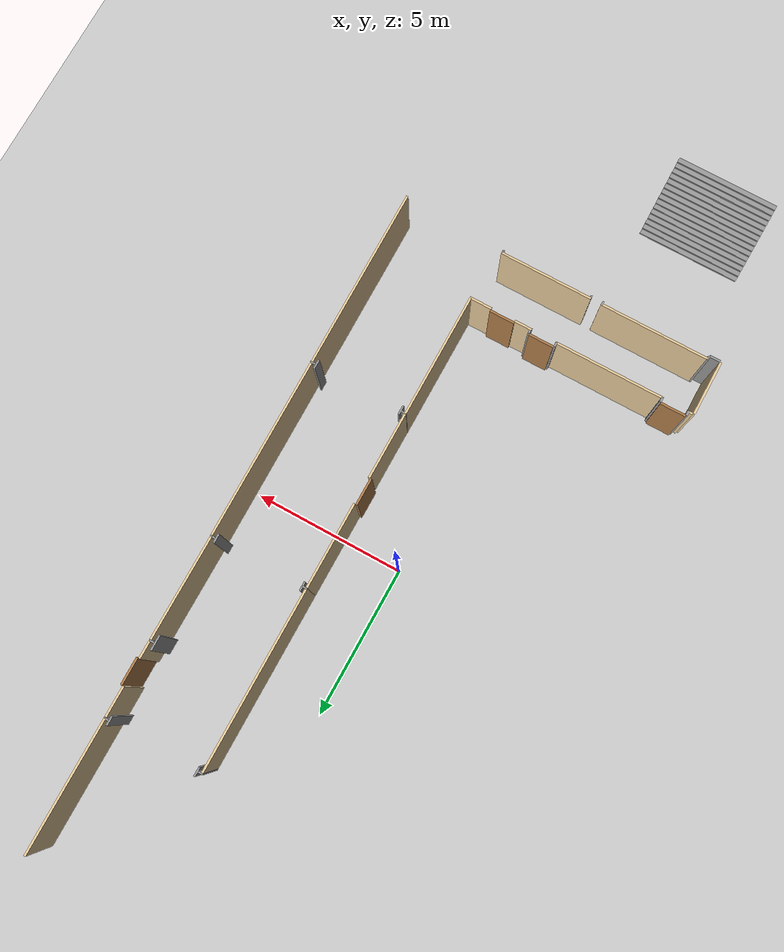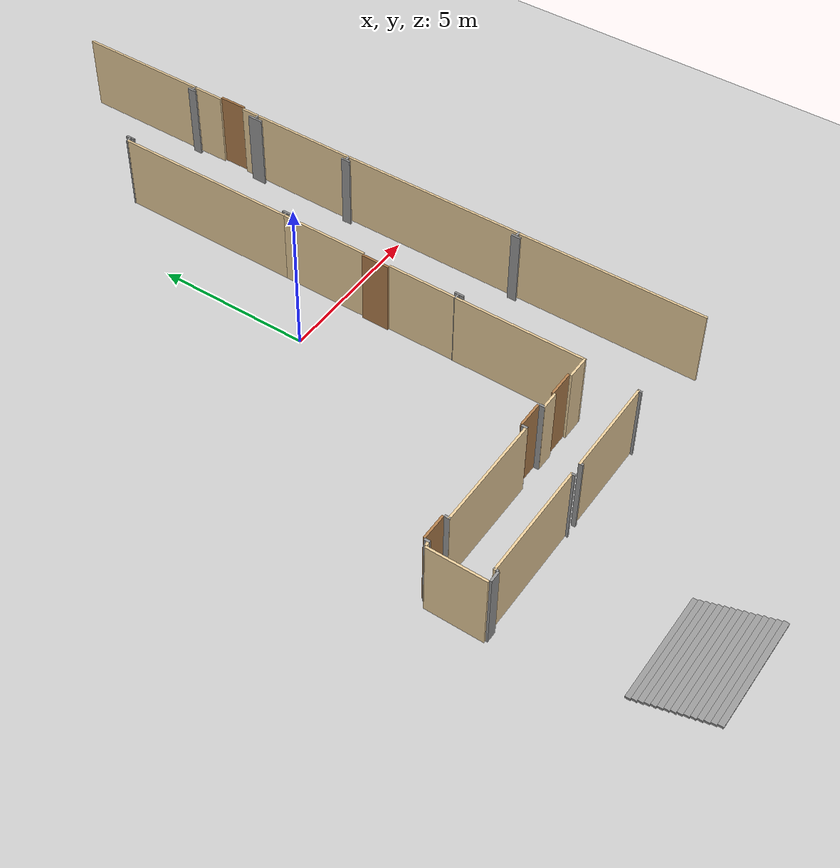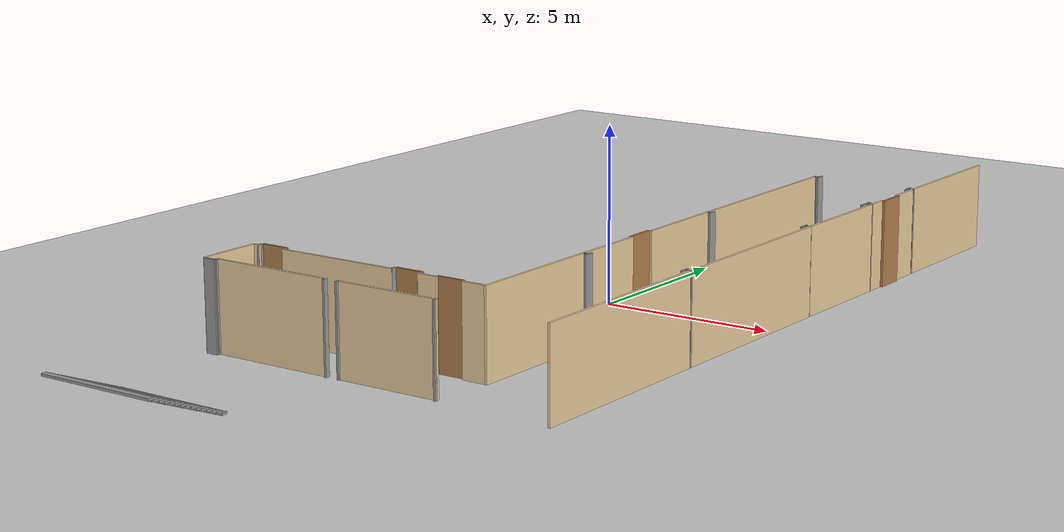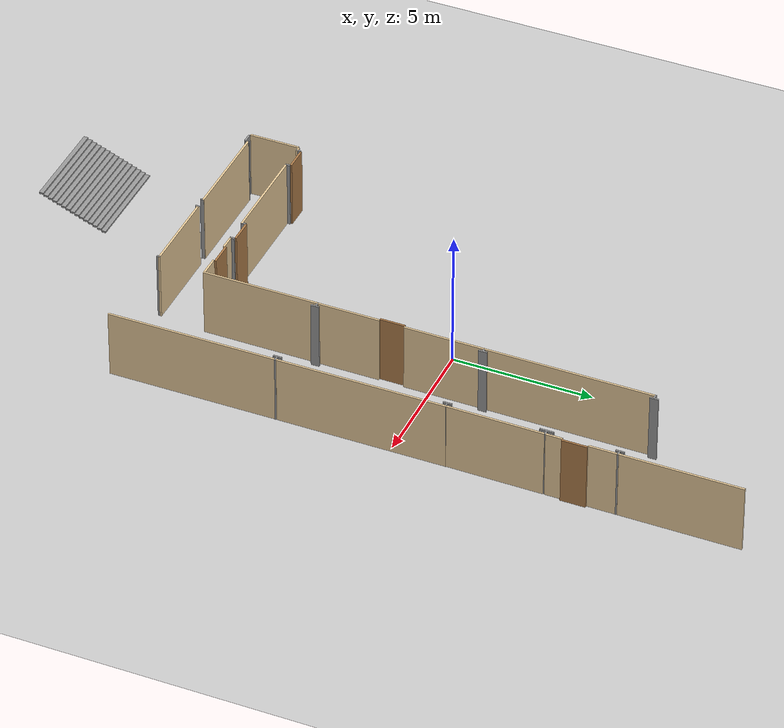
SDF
<sdf version="1.7">
 <world name="default">
  <model name="ground_plane">
   <static>1</static>
   <link name="link">
    <collision name="collision">
     <geometry><plane><normal>0 0 1</normal><size>100 100</size></plane></geometry>
     <surface>
      <contact><collide_bitmask>65535</collide_bitmask></contact>
      <friction><ode><mu>100</mu><mu2>50</mu2></ode></friction>
     </surface>
    </collision>
    <visual name="visual">
     <cast_shadows>0</cast_shadows>
     <geometry><plane><normal>0 0 1</normal><size>100 100</size></plane></geometry>
     <material>
      <script><uri>file://media/materials/scripts/gazebo.material</uri><name>Gazebo/Grey</name></script>
     </material>
    </visual>
   </link>
  </model>
  <model name="Fakulte_koridor">
   <pose>-0.108629 -0.105707 0 0 -0 0</pose>
   <link name="Stairs_0">
    <visual name="Stairs_0_Visual_0">
     <pose>-3.19496 -13.5268 0.033333 0 -0 0</pose>
     <geometry><box><size>3.48995 0.166667 0.066667</size></box></geometry>
     <material>
      <script><uri>file://media/materials/scripts/gazebo.material</uri><name>Gazebo/Grey</name></script>
      <ambient>0.333333 0.341176 0.32549 1</ambient>
     </material>
     <meta><layer>0</layer></meta>
    </visual>
    <collision name="Stairs_0_Collision_0">
     <geometry><box><size>3.48995 0.166667 0.066667</size></box></geometry>
     <pose>-3.19496 -13.5268 0.033333 0 -0 0</pose>
    </collision>
    <visual name="Stairs_0_Visual_1">
     <pose>-3.19496 -13.6934 0.1 0 -0 0</pose>
     <geometry><box><size>3.48995 0.166667 0.066667</size></box></geometry>
     <material>
      <script><uri>file://media/materials/scripts/gazebo.material</uri><name>Gazebo/Grey</name></script>
      <ambient>0.333333 0.341176 0.32549 1</ambient>
     </material>
     <meta><layer>0</layer></meta>
    </visual>
    <collision name="Stairs_0_Collision_1">
     <geometry><box><size>3.48995 0.166667 0.066667</size></box></geometry>
     <pose>-3.19496 -13.6934 0.1 0 -0 0</pose>
    </collision>
    <visual name="Stairs_0_Visual_2">
     <pose>-3.19496 -13.8601 0.166667 0 -0 0</pose>
     <geometry><box><size>3.48995 0.166667 0.066667</size></box></geometry>
     <material>
      <script><uri>file://media/materials/scripts/gazebo.material</uri><name>Gazebo/Grey</name></script>
      <ambient>0.333333 0.341176 0.32549 1</ambient>
     </material>
     <meta><layer>0</layer></meta>
    </visual>
    <collision name="Stairs_0_Collision_2">
     <geometry><box><size>3.48995 0.166667 0.066667</size></box></geometry>
     <pose>-3.19496 -13.8601 0.166667 0 -0 0</pose>
    </collision>
    <visual name="Stairs_0_Visual_3">
     <pose>-3.19496 -14.0268 0.233333 0 -0 0</pose>
     <geometry><box><size>3.48995 0.166667 0.066667</size></box></geometry>
     <material>
      <script><uri>file://media/materials/scripts/gazebo.material</uri><name>Gazebo/Grey</name></script>
      <ambient>0.333333 0.341176 0.32549 1</ambient>
     </material>
     <meta><layer>0</layer></meta>
    </visual>
    <collision name="Stairs_0_Collision_3">
     <geometry><box><size>3.48995 0.166667 0.066667</size></box></geometry>
     <pose>-3.19496 -14.0268 0.233333 0 -0 0</pose>
    </collision>
    <visual name="Stairs_0_Visual_4">
     <pose>-3.19496 -14.1934 0.3 0 -0 0</pose>
     <geometry><box><size>3.48995 0.166667 0.066667</size></box></geometry>
     <material>
      <script><uri>file://media/materials/scripts/gazebo.material</uri><name>Gazebo/Grey</name></script>
      <ambient>0.333333 0.341176 0.32549 1</ambient>
     </material>
     <meta><layer>0</layer></meta>
    </visual>
    <collision name="Stairs_0_Collision_4">
     <geometry><box><size>3.48995 0.166667 0.066667</size></box></geometry>
     <pose>-3.19496 -14.1934 0.3 0 -0 0</pose>
    </collision>
    <visual name="Stairs_0_Visual_5">
     <pose>-3.19496 -14.3601 0.366667 0 -0 0</pose>
     <geometry><box><size>3.48995 0.166667 0.066667</size></box></geometry>
     <material>
      <script><uri>file://media/materials/scripts/gazebo.material</uri><name>Gazebo/Grey</name></script>
      <ambient>0.333333 0.341176 0.32549 1</ambient>
     </material>
     <meta><layer>0</layer></meta>
    </visual>
    <collision name="Stairs_0_Collision_5">
     <geometry><box><size>3.48995 0.166667 0.066667</size></box></geometry>
     <pose>-3.19496 -14.3601 0.366667 0 -0 0</pose>
    </collision>
    <visual name="Stairs_0_Visual_6">
     <pose>-3.19496 -14.5268 0.433333 0 -0 0</pose>
     <geometry><box><size>3.48995 0.166667 0.066667</size></box></geometry>
     <material>
      <script><uri>file://media/materials/scripts/gazebo.material</uri><name>Gazebo/Grey</name></script>
      <ambient>0.333333 0.341176 0.32549 1</ambient>
     </material>
     <meta><layer>0</layer></meta>
    </visual>
    <collision name="Stairs_0_Collision_6">
     <geometry><box><size>3.48995 0.166667 0.066667</size></box></geometry>
     <pose>-3.19496 -14.5268 0.433333 0 -0 0</pose>
    </collision>
    <visual name="Stairs_0_Visual_7">
     <pose>-3.19496 -14.6934 0.5 0 -0 0</pose>
     <geometry><box><size>3.48995 0.166667 0.066667</size></box></geometry>
     <material>
      <script><uri>file://media/materials/scripts/gazebo.material</uri><name>Gazebo/Grey</name></script>
      <ambient>0.333333 0.341176 0.32549 1</ambient>
     </material>
     <meta><layer>0</layer></meta>
    </visual>
    <collision name="Stairs_0_Collision_7">
     <geometry><box><size>3.48995 0.166667 0.066667</size></box></geometry>
     <pose>-3.19496 -14.6934 0.5 0 -0 0</pose>
    </collision>
    <visual name="Stairs_0_Visual_8">
     <pose>-3.19496 -14.8601 0.566667 0 -0 0</pose>
     <geometry><box><size>3.48995 0.166667 0.066667</size></box></geometry>
     <material>
      <script><uri>file://media/materials/scripts/gazebo.material</uri><name>Gazebo/Grey</name></script>
      <ambient>0.333333 0.341176 0.32549 1</ambient>
     </material>
     <meta><layer>0</layer></meta>
    </visual>
    <collision name="Stairs_0_Collision_8">
     <geometry><box><size>3.48995 0.166667 0.066667</size></box></geometry>
     <pose>-3.19496 -14.8601 0.566667 0 -0 0</pose>
    </collision>
    <visual name="Stairs_0_Visual_9">
     <pose>-3.19496 -15.0268 0.633333 0 -0 0</pose>
     <geometry><box><size>3.48995 0.166667 0.066667</size></box></geometry>
     <material>
      <script><uri>file://media/materials/scripts/gazebo.material</uri><name>Gazebo/Grey</name></script>
      <ambient>0.333333 0.341176 0.32549 1</ambient>
     </material>
     <meta><layer>0</layer></meta>
    </visual>
    <collision name="Stairs_0_Collision_9">
     <geometry><box><size>3.48995 0.166667 0.066667</size></box></geometry>
     <pose>-3.19496 -15.0268 0.633333 0 -0 0</pose>
    </collision>
    <visual name="Stairs_0_Visual_10">
     <pose>-3.19496 -15.1934 0.7 0 -0 0</pose>
     <geometry><box><size>3.48995 0.166667 0.066667</size></box></geometry>
     <material>
      <script><uri>file://media/materials/scripts/gazebo.material</uri><name>Gazebo/Grey</name></script>
      <ambient>0.333333 0.341176 0.32549 1</ambient>
     </material>
     <meta><layer>0</layer></meta>
    </visual>
    <collision name="Stairs_0_Collision_10">
     <geometry><box><size>3.48995 0.166667 0.066667</size></box></geometry>
     <pose>-3.19496 -15.1934 0.7 0 -0 0</pose>
    </collision>
    <visual name="Stairs_0_Visual_11">
     <pose>-3.19496 -15.3601 0.766667 0 -0 0</pose>
     <geometry><box><size>3.48995 0.166667 0.066667</size></box></geometry>
     <material>
      <script><uri>file://media/materials/scripts/gazebo.material</uri><name>Gazebo/Grey</name></script>
      <ambient>0.333333 0.341176 0.32549 1</ambient>
     </material>
     <meta><layer>0</layer></meta>
    </visual>
    <collision name="Stairs_0_Collision_11">
     <geometry><box><size>3.48995 0.166667 0.066667</size></box></geometry>
     <pose>-3.19496 -15.3601 0.766667 0 -0 0</pose>
    </collision>
    <visual name="Stairs_0_Visual_12">
     <pose>-3.19496 -15.5268 0.833333 0 -0 0</pose>
     <geometry><box><size>3.48995 0.166667 0.066667</size></box></geometry>
     <material>
      <script><uri>file://media/materials/scripts/gazebo.material</uri><name>Gazebo/Grey</name></script>
      <ambient>0.333333 0.341176 0.32549 1</ambient>
     </material>
     <meta><layer>0</layer></meta>
    </visual>
    <collision name="Stairs_0_Collision_12">
     <geometry><box><size>3.48995 0.166667 0.066667</size></box></geometry>
     <pose>-3.19496 -15.5268 0.833333 0 -0 0</pose>
    </collision>
    <visual name="Stairs_0_Visual_13">
     <pose>-3.19496 -15.6934 0.9 0 -0 0</pose>
     <geometry><box><size>3.48995 0.166667 0.066667</size></box></geometry>
     <material>
      <script><uri>file://media/materials/scripts/gazebo.material</uri><name>Gazebo/Grey</name></script>
      <ambient>0.333333 0.341176 0.32549 1</ambient>
     </material>
     <meta><layer>0</layer></meta>
    </visual>
    <collision name="Stairs_0_Collision_13">
     <geometry><box><size>3.48995 0.166667 0.066667</size></box></geometry>
     <pose>-3.19496 -15.6934 0.9 0 -0 0</pose>
    </collision>
    <visual name="Stairs_0_Visual_14">
     <pose>-3.19496 -15.8601 0.966667 0 -0 0</pose>
     <geometry><box><size>3.48995 0.166667 0.066667</size></box></geometry>
     <material>
      <script><uri>file://media/materials/scripts/gazebo.material</uri><name>Gazebo/Grey</name></script>
      <ambient>0.333333 0.341176 0.32549 1</ambient>
     </material>
     <meta><layer>0</layer></meta>
    </visual>
    <collision name="Stairs_0_Collision_14">
     <geometry><box><size>3.48995 0.166667 0.066667</size></box></geometry>
     <pose>-3.19496 -15.8601 0.966667 0 -0 0</pose>
    </collision>
   </link>
   <link name="Wall_174">
    <collision name="Wall_174_Collision">
     <geometry><box><size>0.175 0.06 2.5</size></box></geometry>
     <pose>0 0 1.25 0 -0 0</pose>
    </collision>
    <visual name="Wall_174_Visual">
     <pose>0 0 1.25 0 -0 0</pose>
     <geometry><box><size>0.175 0.06 2.5</size></box></geometry>
     <material>
      <script><uri>file://media/materials/scripts/gazebo.material</uri><name>Gazebo/Grey</name></script>
      <ambient>0.180392 0.203922 0.211765 1</ambient>
     </material>
     <meta><layer>0</layer></meta>
    </visual>
    <pose>2.10606 8.02576 0 0 -0 0</pose>
   </link>
   <link name="Wall_176">
    <collision name="Wall_176_Collision">
     <geometry><box><size>0.3 0.06 2.5</size></box></geometry>
     <pose>0 0 1.25 0 -0 0</pose>
    </collision>
    <visual name="Wall_176_Visual">
     <pose>0 0 1.25 0 -0 0</pose>
     <geometry><box><size>0.3 0.06 2.5</size></box></geometry>
     <material>
      <script><uri>file://media/materials/scripts/gazebo.material</uri><name>Gazebo/Grey</name></script>
      <ambient>0.180392 0.203922 0.211765 1</ambient>
     </material>
     <meta><layer>0</layer></meta>
    </visual>
    <pose>2.2092 8.04168 0 0 -0 -1.5708</pose>
   </link>
   <link name="Wall_178">
    <collision name="Wall_178_Collision">
     <geometry><box><size>5.995 0.07 2.5</size></box></geometry>
     <pose>0 0 1.25 0 -0 0</pose>
    </collision>
    <visual name="Wall_178_Visual">
     <pose>0 0 1.25 0 -0 0</pose>
     <geometry><box><size>5.995 0.07 2.5</size></box></geometry>
     <material>
      <script><uri>file://media/materials/scripts/gazebo.material</uri><name>Gazebo/Grey</name></script>
      <ambient>0.921569 0.807843 0.615686 1</ambient>
     </material>
     <meta><layer>0</layer></meta>
    </visual>
    <pose>2.05863 5.00721 0 0 -0 -1.5708</pose>
   </link>
   <link name="Wall_180">
    <collision name="Wall_180_Collision">
     <geometry><box><size>0.175 0.06 2.5</size></box></geometry>
     <pose>0 0 1.25 0 -0 0</pose>
    </collision>
    <visual name="Wall_180_Visual">
     <pose>0 0 1.25 0 -0 0</pose>
     <geometry><box><size>0.175 0.06 2.5</size></box></geometry>
     <material>
      <script><uri>file://media/materials/scripts/gazebo.material</uri><name>Gazebo/Grey</name></script>
      <ambient>0.180392 0.203922 0.211765 1</ambient>
     </material>
     <meta><layer>0</layer></meta>
    </visual>
    <pose>2.11134 2.04088 0 0 -0 0</pose>
   </link>
   <link name="Wall_182">
    <collision name="Wall_182_Collision">
     <geometry><box><size>0.3 0.06 2.5</size></box></geometry>
     <pose>0 0 1.25 0 -0 0</pose>
    </collision>
    <visual name="Wall_182_Visual">
     <pose>0 0 1.25 0 -0 0</pose>
     <geometry><box><size>0.3 0.06 2.5</size></box></geometry>
     <material>
      <script><uri>file://media/materials/scripts/gazebo.material</uri><name>Gazebo/Grey</name></script>
      <ambient>0.180392 0.203922 0.211765 1</ambient>
     </material>
     <meta><layer>0</layer></meta>
    </visual>
    <pose>2.19078 2.04124 0 0 -0 -1.5708</pose>
   </link>
   <link name="Wall_184">
    <collision name="Wall_184_Collision">
     <geometry><box><size>2.842 0.07 2.5</size></box></geometry>
     <pose>0 0 1.25 0 -0 0</pose>
    </collision>
    <visual name="Wall_184_Visual">
     <pose>0 0 1.25 0 -0 0</pose>
     <geometry><box><size>2.842 0.07 2.5</size></box></geometry>
     <material>
      <script><uri>file://media/materials/scripts/gazebo.material</uri><name>Gazebo/Grey</name></script>
      <ambient>0.921569 0.807843 0.615686 1</ambient>
     </material>
     <meta><layer>0</layer></meta>
    </visual>
    <pose>2.05811 0.604001 0 0 -0 -1.5708</pose>
   </link>
   <link name="Wall_186">
    <collision name="Wall_186_Collision">
     <geometry><box><size>2.21 0.07 2.5</size></box></geometry>
     <pose>0 0 1.25 0 -0 0</pose>
    </collision>
    <visual name="Wall_186_Visual">
     <pose>0 0 1.25 0 -0 0</pose>
     <geometry><box><size>2.21 0.07 2.5</size></box></geometry>
     <material>
      <script><uri>file://media/materials/scripts/gazebo.material</uri><name>Gazebo/Grey</name></script>
      <ambient>0.921569 0.807843 0.615686 1</ambient>
     </material>
     <meta><layer>0</layer></meta>
    </visual>
    <pose>2.05119 -2.80108 0 0 -0 -1.5708</pose>
   </link>
   <link name="Wall_188">
    <collision name="Wall_188_Collision">
     <geometry><box><size>0.895 0.07 2.5</size></box></geometry>
     <pose>0 0 1.25 0 -0 0</pose>
    </collision>
    <visual name="Wall_188_Visual">
     <pose>0 0 1.25 0 -0 0</pose>
     <geometry><box><size>0.895 0.07 2.5</size></box></geometry>
     <material>
      <script><uri>file://media/materials/scripts/gazebo.material</uri><name>Gazebo/Wood</name></script>
      <ambient>1 1 1 1</ambient>
     </material>
     <meta><layer>0</layer></meta>
    </visual>
    <pose>1.98547 -1.25931 0 0 -0 -1.5708</pose>
   </link>
   <link name="Wall_190">
    <collision name="Wall_190_Collision">
     <geometry><box><size>0.175 0.06 2.5</size></box></geometry>
     <pose>0 0 1.25 0 -0 0</pose>
    </collision>
    <visual name="Wall_190_Visual">
     <pose>0 0 1.25 0 -0 0</pose>
     <geometry><box><size>0.175 0.06 2.5</size></box></geometry>
     <material>
      <script><uri>file://media/materials/scripts/gazebo.material</uri><name>Gazebo/Grey</name></script>
      <ambient>0.180392 0.203922 0.211765 1</ambient>
     </material>
     <meta><layer>0</layer></meta>
    </visual>
    <pose>2.09974 -3.92485 0 0 -0 0</pose>
   </link>
   <link name="Wall_342">
    <collision name="Wall_342_Collision">
     <geometry><box><size>0.3 0.06 2.5</size></box></geometry>
     <pose>0 0 1.25 0 -0 0</pose>
    </collision>
    <visual name="Wall_342_Visual">
     <pose>0 0 1.25 0 -0 0</pose>
     <geometry><box><size>0.3 0.06 2.5</size></box></geometry>
     <material>
      <script><uri>file://media/materials/scripts/gazebo.material</uri><name>Gazebo/Grey</name></script>
      <ambient>0.180392 0.203922 0.211765 1</ambient>
     </material>
     <meta><layer>0</layer></meta>
    </visual>
    <pose>2.21449 -3.94612 0 0 -0 -1.5708</pose>
   </link>
   <link name="Wall_344">
    <collision name="Wall_344_Collision">
     <geometry><box><size>4.16 0.07 2.5</size></box></geometry>
     <pose>0 0 1.25 0 -0 0</pose>
    </collision>
    <visual name="Wall_344_Visual">
     <pose>0 0 1.25 0 -0 0</pose>
     <geometry><box><size>4.16 0.07 2.5</size></box></geometry>
     <material>
      <script><uri>file://media/materials/scripts/gazebo.material</uri><name>Gazebo/Grey</name></script>
      <ambient>0.921569 0.807843 0.615686 1</ambient>
     </material>
     <meta><layer>0</layer></meta>
    </visual>
    <pose>2.04668 -5.99595 0 0 -0 -1.5708</pose>
   </link>
   <link name="Wall_348">
    <collision name="Wall_348_Collision">
     <geometry><box><size>0.745 0.07 2.5</size></box></geometry>
     <pose>0 0 1.25 0 -0 0</pose>
    </collision>
    <visual name="Wall_348_Visual">
     <pose>0 0 1.25 0 -0 0</pose>
     <geometry><box><size>0.745 0.07 2.5</size></box></geometry>
     <material>
      <script><uri>file://media/materials/scripts/gazebo.material</uri><name>Gazebo/Grey</name></script>
      <ambient>0.921569 0.807843 0.615686 1</ambient>
     </material>
     <meta><layer>0</layer></meta>
    </visual>
    <pose>1.70111 -8.03814 0 0 -0 0</pose>
   </link>
   <link name="Wall_350">
    <collision name="Wall_350_Collision">
     <geometry><box><size>0.825 0.07 2.5</size></box></geometry>
     <pose>0 0 1.25 0 -0 0</pose>
    </collision>
    <visual name="Wall_350_Visual">
     <pose>0 0 1.25 0 -0 0</pose>
     <geometry><box><size>0.825 0.07 2.5</size></box></geometry>
     <material>
      <script><uri>file://media/materials/scripts/gazebo.material</uri><name>Gazebo/Wood</name></script>
      <ambient>1 1 1 1</ambient>
     </material>
     <meta><layer>0</layer></meta>
    </visual>
    <pose>0.927815 -7.96515 0 0 -0 3.14159</pose>
   </link>
   <link name="Wall_352">
    <collision name="Wall_352_Collision">
     <geometry><box><size>0.58 0.07 2.5</size></box></geometry>
     <pose>0 0 1.25 0 -0 0</pose>
    </collision>
    <visual name="Wall_352_Visual">
     <pose>0 0 1.25 0 -0 0</pose>
     <geometry><box><size>0.58 0.07 2.5</size></box></geometry>
     <material>
      <script><uri>file://media/materials/scripts/gazebo.material</uri><name>Gazebo/Grey</name></script>
      <ambient>0.921569 0.807843 0.615686 1</ambient>
     </material>
     <meta><layer>0</layer></meta>
    </visual>
    <pose>0.242096 -8.03226 0 0 -0 0</pose>
   </link>
   <link name="Wall_354">
    <collision name="Wall_354_Collision">
     <geometry><box><size>0.17 0.07 2.5</size></box></geometry>
     <pose>0 0 1.25 0 -0 0</pose>
    </collision>
    <visual name="Wall_354_Visual">
     <pose>0 0 1.25 0 -0 0</pose>
     <geometry><box><size>0.17 0.07 2.5</size></box></geometry>
     <material>
      <script><uri>file://media/materials/scripts/gazebo.material</uri><name>Gazebo/Grey</name></script>
      <ambient>1 1 1 1</ambient>
     </material>
     <meta><layer>0</layer></meta>
    </visual>
    <pose>-0.019371 -7.98029 0 0 -0 1.5708</pose>
   </link>
   <link name="Wall_356">
    <collision name="Wall_356_Collision">
     <geometry><box><size>0.825 0.07 2.5</size></box></geometry>
     <pose>0 0 1.25 0 -0 0</pose>
    </collision>
    <visual name="Wall_356_Visual">
     <pose>0 0 1.25 0 -0 0</pose>
     <geometry><box><size>0.825 0.07 2.5</size></box></geometry>
     <material>
      <script><uri>file://media/materials/scripts/gazebo.material</uri><name>Gazebo/Wood</name></script>
      <ambient>1 1 1 1</ambient>
     </material>
     <meta><layer>0</layer></meta>
    </visual>
    <pose>-0.460042 -7.86803 0 0 -0 0</pose>
   </link>
   <link name="Wall_358">
    <collision name="Wall_358_Collision">
     <geometry><box><size>0.17 0.07 2.5</size></box></geometry>
     <pose>0 0 1.25 0 -0 0</pose>
    </collision>
    <visual name="Wall_358_Visual">
     <pose>0 0 1.25 0 -0 0</pose>
     <geometry><box><size>0.17 0.07 2.5</size></box></geometry>
     <material>
      <script><uri>file://media/materials/scripts/gazebo.material</uri><name>Gazebo/Grey</name></script>
      <ambient>1 1 1 1</ambient>
     </material>
     <meta><layer>0</layer></meta>
    </visual>
    <pose>-0.896745 -7.97567 0 0 -0 -1.5708</pose>
   </link>
   <link name="Wall_360">
    <collision name="Wall_360_Collision">
     <geometry><box><size>3.637 0.07 2.5</size></box></geometry>
     <pose>0 0 1.25 0 -0 0</pose>
    </collision>
    <visual name="Wall_360_Visual">
     <pose>0 0 1.25 0 -0 0</pose>
     <geometry><box><size>3.637 0.07 2.5</size></box></geometry>
     <material>
      <script><uri>file://media/materials/scripts/gazebo.material</uri><name>Gazebo/Grey</name></script>
      <ambient>0.921569 0.807843 0.615686 1</ambient>
     </material>
     <meta><layer>0</layer></meta>
    </visual>
    <pose>-2.68603 -8.02689 0 0 -0 0</pose>
   </link>
   <link name="Wall_362">
    <collision name="Wall_362_Collision">
     <geometry><box><size>0.17 0.07 2.5</size></box></geometry>
     <pose>0 0 1.25 0 -0 0</pose>
    </collision>
    <visual name="Wall_362_Visual">
     <pose>0 0 1.25 0 -0 0</pose>
     <geometry><box><size>0.17 0.07 2.5</size></box></geometry>
     <material>
      <script><uri>file://media/materials/scripts/gazebo.material</uri><name>Gazebo/Grey</name></script>
      <ambient>1 1 1 1</ambient>
     </material>
     <meta><layer>0</layer></meta>
    </visual>
    <pose>-4.47183 -7.97134 0 0 -0 -1.5708</pose>
   </link>
   <link name="Wall_364">
    <collision name="Wall_364_Collision">
     <geometry><box><size>0.825 0.07 2.5</size></box></geometry>
     <pose>0 0 1.25 0 -0 0</pose>
    </collision>
    <visual name="Wall_364_Visual">
     <pose>0 0 1.25 0 -0 0</pose>
     <geometry><box><size>0.825 0.07 2.5</size></box></geometry>
     <material>
      <script><uri>file://media/materials/scripts/gazebo.material</uri><name>Gazebo/Wood</name></script>
      <ambient>1 1 1 1</ambient>
     </material>
     <meta><layer>0</layer></meta>
    </visual>
    <pose>-4.91202 -7.86091 0 0 -0 0</pose>
   </link>
   <link name="Wall_366">
    <collision name="Wall_366_Collision">
     <geometry><box><size>0.17 0.07 2.5</size></box></geometry>
     <pose>0 0 1.25 0 -0 0</pose>
    </collision>
    <visual name="Wall_366_Visual">
     <pose>0 0 1.25 0 -0 0</pose>
     <geometry><box><size>0.17 0.07 2.5</size></box></geometry>
     <material>
      <script><uri>file://media/materials/scripts/gazebo.material</uri><name>Gazebo/Grey</name></script>
      <ambient>1 1 1 1</ambient>
     </material>
     <meta><layer>0</layer></meta>
    </visual>
    <pose>-5.34479 -7.96618 0 0 -0 -1.5708</pose>
   </link>
   <link name="Wall_368">
    <collision name="Wall_368_Collision">
     <geometry><box><size>0.182 0.07 2.5</size></box></geometry>
     <pose>0 0 1.25 0 -0 0</pose>
    </collision>
    <visual name="Wall_368_Visual">
     <pose>0 0 1.25 0 -0 0</pose>
     <geometry><box><size>0.182 0.07 2.5</size></box></geometry>
     <material>
      <script><uri>file://media/materials/scripts/gazebo.material</uri><name>Gazebo/Grey</name></script>
      <ambient>0.921569 0.807843 0.615686 1</ambient>
     </material>
     <meta><layer>0</layer></meta>
    </visual>
    <pose>-5.39932 -8.01565 0 0 -0 0</pose>
   </link>
   <link name="Wall_370">
    <collision name="Wall_370_Collision">
     <geometry><box><size>1.805 0.07 2.5</size></box></geometry>
     <pose>0 0 1.25 0 -0 0</pose>
    </collision>
    <visual name="Wall_370_Visual">
     <pose>0 0 1.25 0 -0 0</pose>
     <geometry><box><size>1.805 0.07 2.5</size></box></geometry>
     <material>
      <script><uri>file://media/materials/scripts/gazebo.material</uri><name>Gazebo/Grey</name></script>
      <ambient>0.921569 0.807843 0.615686 1</ambient>
     </material>
     <meta><layer>0</layer></meta>
    </visual>
    <pose>-5.5237 -8.93953 0 0 -0 -1.5708</pose>
   </link>
   <link name="Wall_372">
    <collision name="Wall_372_Collision">
     <geometry><box><size>0.345 0.07 2.5</size></box></geometry>
     <pose>0 0 1.25 0 -0 0</pose>
    </collision>
    <visual name="Wall_372_Visual">
     <pose>0 0 1.25 0 -0 0</pose>
     <geometry><box><size>0.345 0.07 2.5</size></box></geometry>
     <material>
      <script><uri>file://media/materials/scripts/gazebo.material</uri><name>Gazebo/Grey</name></script>
      <ambient>0.180392 0.203922 0.211765 1</ambient>
     </material>
     <meta><layer>0</layer></meta>
    </visual>
    <pose>-5.32042 -9.87001 0 0 -0 0</pose>
   </link>
   <link name="Wall_374">
    <collision name="Wall_374_Collision">
     <geometry><box><size>0.135 0.06 2.5</size></box></geometry>
     <pose>0 0 1.25 0 -0 0</pose>
    </collision>
    <visual name="Wall_374_Visual">
     <pose>0 0 1.25 0 -0 0</pose>
     <geometry><box><size>0.135 0.06 2.5</size></box></geometry>
     <material>
      <script><uri>file://media/materials/scripts/gazebo.material</uri><name>Gazebo/Grey</name></script>
      <ambient>0.180392 0.203922 0.211765 1</ambient>
     </material>
     <meta><layer>0</layer></meta>
    </visual>
    <pose>-5.12902 -9.79057 0 0 -0 -1.5708</pose>
   </link>
   <link name="Wall_376">
    <collision name="Wall_376_Collision">
     <geometry><box><size>3.643 0.07 2.5</size></box></geometry>
     <pose>0 0 1.25 0 -0 0</pose>
    </collision>
    <visual name="Wall_376_Visual">
     <pose>0 0 1.25 0 -0 0</pose>
     <geometry><box><size>3.643 0.07 2.5</size></box></geometry>
     <material>
      <script><uri>file://media/materials/scripts/gazebo.material</uri><name>Gazebo/Grey</name></script>
      <ambient>0.921569 0.807843 0.615686 1</ambient>
     </material>
     <meta><layer>0</layer></meta>
    </visual>
    <pose>-3.34252 -9.76038 0 0 -0 0</pose>
   </link>
   <link name="Wall_378">
    <collision name="Wall_378_Collision">
     <geometry><box><size>0.135 0.06 2.5</size></box></geometry>
     <pose>0 0 1.25 0 -0 0</pose>
    </collision>
    <visual name="Wall_378_Visual">
     <pose>0 0 1.25 0 -0 0</pose>
     <geometry><box><size>0.135 0.06 2.5</size></box></geometry>
     <material>
      <script><uri>file://media/materials/scripts/gazebo.material</uri><name>Gazebo/Grey</name></script>
      <ambient>1 1 1 1</ambient>
     </material>
     <meta><layer>0</layer></meta>
    </visual>
    <pose>-1.54768 -9.79788 0 0 -0 -1.5708</pose>
   </link>
   <link name="Wall_382">
    <collision name="Wall_382_Collision">
     <geometry><box><size>0.135 0.06 2.5</size></box></geometry>
     <pose>0 0 1.25 0 -0 0</pose>
    </collision>
    <visual name="Wall_382_Visual">
     <pose>0 0 1.25 0 -0 0</pose>
     <geometry><box><size>0.135 0.06 2.5</size></box></geometry>
     <material>
      <script><uri>file://media/materials/scripts/gazebo.material</uri><name>Gazebo/Grey</name></script>
      <ambient>1 1 1 1</ambient>
     </material>
     <meta><layer>0</layer></meta>
    </visual>
    <pose>-1.1457 -9.79788 0 0 -0 -1.5708</pose>
   </link>
   <link name="Wall_384">
    <collision name="Wall_384_Collision">
     <geometry><box><size>3.081 0.07 2.5</size></box></geometry>
     <pose>0 0 1.25 0 -0 0</pose>
    </collision>
    <visual name="Wall_384_Visual">
     <pose>0 0 1.25 0 -0 0</pose>
     <geometry><box><size>3.081 0.07 2.5</size></box></geometry>
     <material>
      <script><uri>file://media/materials/scripts/gazebo.material</uri><name>Gazebo/Grey</name></script>
      <ambient>0.921569 0.807843 0.615686 1</ambient>
     </material>
     <meta><layer>0</layer></meta>
    </visual>
    <pose>0.365469 -9.76534 0 0 -0 0</pose>
   </link>
   <link name="Wall_386">
    <collision name="Wall_386_Collision">
     <geometry><box><size>0.135 0.06 2.5</size></box></geometry>
     <pose>0 0 1.25 0 -0 0</pose>
    </collision>
    <visual name="Wall_386_Visual">
     <pose>0 0 1.25 0 -0 0</pose>
     <geometry><box><size>0.135 0.06 2.5</size></box></geometry>
     <material>
      <script><uri>file://media/materials/scripts/gazebo.material</uri><name>Gazebo/Grey</name></script>
      <ambient>1 1 1 1</ambient>
     </material>
     <meta><layer>0</layer></meta>
    </visual>
    <pose>1.87353 -9.80307 0 0 -0 -1.5708</pose>
   </link>
   <link name="Wall_59">
    <collision name="Wall_59_Collision">
     <geometry><box><size>6.00406 0.07 2.5</size></box></geometry>
     <pose>0 0 1.25 0 -0 0</pose>
    </collision>
    <visual name="Wall_59_Visual">
     <pose>0 0 1.25 0 -0 0</pose>
     <geometry><box><size>6.00406 0.07 2.5</size></box></geometry>
     <material>
      <script><uri>file://media/materials/scripts/gazebo.material</uri><name>Gazebo/Grey</name></script>
      <ambient>0.921569 0.807843 0.615686 1</ambient>
     </material>
     <meta><layer>0</layer></meta>
    </visual>
    <pose>5.30324 -6.9904 0 0 -0 -1.56641</pose>
   </link>
   <link name="Wall_61">
    <collision name="Wall_61_Collision">
     <geometry><box><size>0.175 0.06 2.5</size></box></geometry>
     <pose>0 0 1.25 0 -0 0</pose>
    </collision>
    <visual name="Wall_61_Visual">
     <pose>0 0 1.25 0 -0 0</pose>
     <geometry><box><size>0.175 0.06 2.5</size></box></geometry>
     <material>
      <script><uri>file://media/materials/scripts/gazebo.material</uri><name>Gazebo/Grey</name></script>
      <ambient>0.180392 0.203922 0.211765 1</ambient>
     </material>
     <meta><layer>0</layer></meta>
    </visual>
    <pose>5.2454 -3.96447 0 0 -0 0</pose>
   </link>
   <link name="Wall_63">
    <collision name="Wall_63_Collision">
     <geometry><box><size>0.3 0.06 2.5</size></box></geometry>
     <pose>0 0 1.25 0 -0 0</pose>
    </collision>
    <visual name="Wall_63_Visual">
     <pose>0 0 1.25 0 -0 0</pose>
     <geometry><box><size>0.3 0.06 2.5</size></box></geometry>
     <material>
      <script><uri>file://media/materials/scripts/gazebo.material</uri><name>Gazebo/Grey</name></script>
      <ambient>0.180392 0.203922 0.211765 1</ambient>
     </material>
     <meta><layer>0</layer></meta>
    </visual>
    <pose>5.12944 -3.9708 0 0 -0 -1.5708</pose>
   </link>
   <link name="Wall_65">
    <collision name="Wall_65_Collision">
     <geometry><box><size>5.99867 0.07 2.5</size></box></geometry>
     <pose>0 0 1.25 0 -0 0</pose>
    </collision>
    <visual name="Wall_65_Visual">
     <pose>0 0 1.25 0 -0 0</pose>
     <geometry><box><size>5.99867 0.07 2.5</size></box></geometry>
     <material>
      <script><uri>file://media/materials/scripts/gazebo.material</uri><name>Gazebo/Grey</name></script>
      <ambient>0.921569 0.807843 0.615686 1</ambient>
     </material>
     <meta><layer>0</layer></meta>
    </visual>
    <pose>5.28157 -0.942477 0 0 -0 -1.56763</pose>
   </link>
   <link name="Wall_67">
    <collision name="Wall_67_Collision">
     <geometry><box><size>0.175 0.06 2.5</size></box></geometry>
     <pose>0 0 1.25 0 -0 0</pose>
    </collision>
    <visual name="Wall_67_Visual">
     <pose>0 0 1.25 0 -0 0</pose>
     <geometry><box><size>0.175 0.06 2.5</size></box></geometry>
     <material>
      <script><uri>file://media/materials/scripts/gazebo.material</uri><name>Gazebo/Grey</name></script>
      <ambient>0.180392 0.203922 0.211765 1</ambient>
     </material>
     <meta><layer>0</layer></meta>
    </visual>
    <pose>5.2184 2.03779 0 0 -0 0</pose>
   </link>
   <link name="Wall_69">
    <collision name="Wall_69_Collision">
     <geometry><box><size>0.3 0.06 2.5</size></box></geometry>
     <pose>0 0 1.25 0 -0 0</pose>
    </collision>
    <visual name="Wall_69_Visual">
     <pose>0 0 1.25 0 -0 0</pose>
     <geometry><box><size>0.3 0.06 2.5</size></box></geometry>
     <material>
      <script><uri>file://media/materials/scripts/gazebo.material</uri><name>Gazebo/Grey</name></script>
      <ambient>0.180392 0.203922 0.211765 1</ambient>
     </material>
     <meta><layer>0</layer></meta>
    </visual>
    <pose>5.10189 2.02945 0 0 -0 -1.5708</pose>
   </link>
   <link name="Wall_72">
    <collision name="Wall_72_Collision">
     <geometry><box><size>3.43521 0.07 2.5</size></box></geometry>
     <pose>0 0 1.25 0 -0 0</pose>
    </collision>
    <visual name="Wall_72_Visual">
     <pose>0 0 1.25 0 -0 0</pose>
     <geometry><box><size>3.43521 0.07 2.5</size></box></geometry>
     <material>
      <script><uri>file://media/materials/scripts/gazebo.material</uri><name>Gazebo/Grey</name></script>
      <ambient>0.921569 0.807843 0.615686 1</ambient>
     </material>
     <meta><layer>0</layer></meta>
    </visual>
    <pose>5.27097 3.7715 0 0 -0 -1.57527</pose>
   </link>
   <link name="Wall_74">
    <collision name="Wall_74_Collision">
     <geometry><box><size>0.175 0.06 2.5</size></box></geometry>
     <pose>0 0 1.25 0 -0 0</pose>
    </collision>
    <visual name="Wall_74_Visual">
     <pose>0 0 1.25 0 -0 0</pose>
     <geometry><box><size>0.175 0.06 2.5</size></box></geometry>
     <material>
      <script><uri>file://media/materials/scripts/gazebo.material</uri><name>Gazebo/Grey</name></script>
      <ambient>0.180392 0.203922 0.211765 1</ambient>
     </material>
     <meta><layer>0</layer></meta>
    </visual>
    <pose>5.21531 5.50654 0 0 -0 0</pose>
   </link>
   <link name="Wall_76">
    <collision name="Wall_76_Collision">
     <geometry><box><size>0.495 0.06 2.5</size></box></geometry>
     <pose>0 0 1.25 0 -0 0</pose>
    </collision>
    <visual name="Wall_76_Visual">
     <pose>0 0 1.25 0 -0 0</pose>
     <geometry><box><size>0.495 0.06 2.5</size></box></geometry>
     <material>
      <script><uri>file://media/materials/scripts/gazebo.material</uri><name>Gazebo/Grey</name></script>
      <ambient>0.180392 0.203922 0.211765 1</ambient>
     </material>
     <meta><layer>0</layer></meta>
    </visual>
    <pose>5.10811 5.49189 0 0 -0 -1.5708</pose>
   </link>
   <link name="Wall_78">
    <collision name="Wall_78_Collision">
     <geometry><box><size>0.578 0.07 2.5</size></box></geometry>
     <pose>0 0 1.25 0 -0 0</pose>
    </collision>
    <visual name="Wall_78_Visual">
     <pose>0 0 1.25 0 -0 0</pose>
     <geometry><box><size>0.578 0.07 2.5</size></box></geometry>
     <material>
      <script><uri>file://media/materials/scripts/gazebo.material</uri><name>Gazebo/Grey</name></script>
      <ambient>0.921569 0.807843 0.615686 1</ambient>
     </material>
     <meta><layer>0</layer></meta>
    </visual>
    <pose>5.27902 5.81562 0 0 -0 -1.5708</pose>
   </link>
   <link name="Wall_82">
    <collision name="Wall_82_Collision">
     <geometry><box><size>0.895 0.07 2.5</size></box></geometry>
     <pose>0 0 1.25 0 -0 0</pose>
    </collision>
    <visual name="Wall_82_Visual">
     <pose>0 0 1.25 0 -0 0</pose>
     <geometry><box><size>0.895 0.07 2.5</size></box></geometry>
     <material>
      <script><uri>file://media/materials/scripts/gazebo.material</uri><name>Gazebo/Wood</name></script>
      <ambient>1 1 1 1</ambient>
     </material>
     <meta><layer>0</layer></meta>
    </visual>
    <pose>5.34929 6.54897 0 0 -0 -1.5708</pose>
   </link>
   <link name="Wall_84">
    <collision name="Wall_84_Collision">
     <geometry><box><size>0.995 0.07 2.5</size></box></geometry>
     <pose>0 0 1.25 0 -0 0</pose>
    </collision>
    <visual name="Wall_84_Visual">
     <pose>0 0 1.25 0 -0 0</pose>
     <geometry><box><size>0.995 0.07 2.5</size></box></geometry>
     <material>
      <script><uri>file://media/materials/scripts/gazebo.material</uri><name>Gazebo/Grey</name></script>
      <ambient>0.921569 0.807843 0.615686 1</ambient>
     </material>
     <meta><layer>0</layer></meta>
    </visual>
    <pose>5.27534 7.48975 0 0 -0 -1.5708</pose>
   </link>
   <link name="Wall_86">
    <collision name="Wall_86_Collision">
     <geometry><box><size>0.175 0.06 2.5</size></box></geometry>
     <pose>0 0 1.25 0 -0 0</pose>
    </collision>
    <visual name="Wall_86_Visual">
     <pose>0 0 1.25 0 -0 0</pose>
     <geometry><box><size>0.175 0.06 2.5</size></box></geometry>
     <material>
      <script><uri>file://media/materials/scripts/gazebo.material</uri><name>Gazebo/Grey</name></script>
      <ambient>0.180392 0.203922 0.211765 1</ambient>
     </material>
     <meta><layer>0</layer></meta>
    </visual>
    <pose>5.22991 8.02009 0 0 -0 0</pose>
   </link>
   <link name="Wall_88">
    <collision name="Wall_88_Collision">
     <geometry><box><size>0.3 0.06 2.5</size></box></geometry>
     <pose>0 0 1.25 0 -0 0</pose>
    </collision>
    <visual name="Wall_88_Visual">
     <pose>0 0 1.25 0 -0 0</pose>
     <geometry><box><size>0.3 0.06 2.5</size></box></geometry>
     <material>
      <script><uri>file://media/materials/scripts/gazebo.material</uri><name>Gazebo/Grey</name></script>
      <ambient>0.180392 0.203922 0.211765 1</ambient>
     </material>
     <meta><layer>0</layer></meta>
    </visual>
    <pose>5.12404 8.01819 0 0 -0 -1.5708</pose>
   </link>
   <link name="Wall_92">
    <collision name="Wall_92_Collision">
     <geometry><box><size>4.315 0.07 2.5</size></box></geometry>
     <pose>0 0 1.25 0 -0 0</pose>
    </collision>
    <visual name="Wall_92_Visual">
     <pose>0 0 1.25 0 -0 0</pose>
     <geometry><box><size>4.315 0.07 2.5</size></box></geometry>
     <material>
      <script><uri>file://media/materials/scripts/gazebo.material</uri><name>Gazebo/Grey</name></script>
      <ambient>0.921569 0.807843 0.615686 1</ambient>
     </material>
     <meta><layer>0</layer></meta>
    </visual>
    <pose>5.27563 10.1832 0 0 -0 -1.5708</pose>
   </link>
   <static>1</static>
  </model>
 </world>
</sdf>
